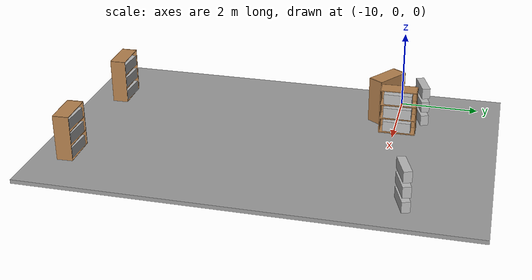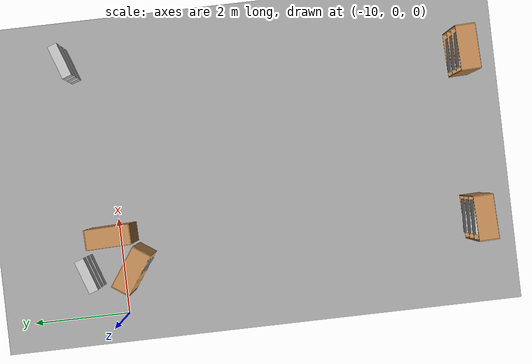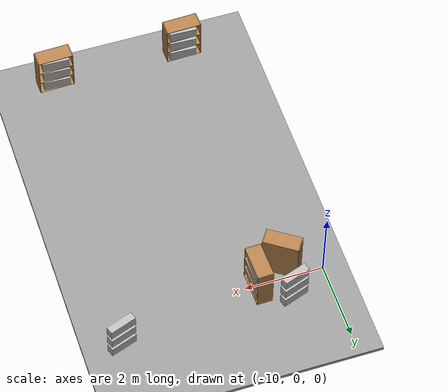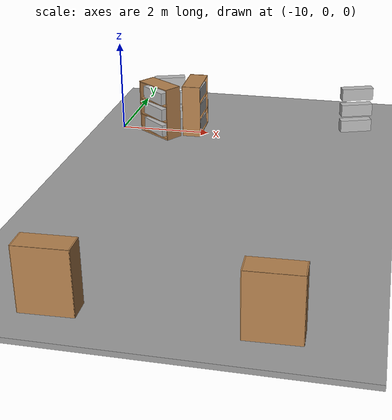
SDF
<sdf version="1.7">
 <world name="default">
  <model name="ground_plane">
   <static>1</static>
   <link name="link">
    <collision name="collision">
     <geometry><plane><normal>0 0 1</normal><size>100 100</size></plane></geometry>
     <surface><friction><ode><mu>100</mu><mu2>50</mu2></ode></friction></surface>
    </collision>
    <visual name="visual">
     <cast_shadows>0</cast_shadows>
     <geometry><plane><normal>0 0 1</normal><size>100 100</size></plane></geometry>
     <material>
      <script><uri>file://media/materials/scripts/gazebo.material</uri><name>Gazebo/Grey</name></script>
     </material>
    </visual>
   </link>
  </model>
  <model name="ground_plane_1">
   <static>1</static>
   <link name="link">
    <collision name="collision">
     <geometry><plane><normal>0 0 1</normal><size>100 100</size></plane></geometry>
     <surface>
      <contact><collide_bitmask>65535</collide_bitmask></contact>
      <friction><ode><mu>100</mu><mu2>50</mu2></ode></friction>
     </surface>
    </collision>
    <visual name="visual">
     <cast_shadows>0</cast_shadows>
     <geometry><plane><normal>0 0 1</normal><size>100 100</size></plane></geometry>
     <material>
      <script><uri>file://media/materials/scripts/gazebo.material</uri><name>Gazebo/Grey</name></script>
     </material>
    </visual>
   </link>
   <pose>-14.0073 -2.16514 0 0 -0 0</pose>
  </model>
  <model name="bookshelf_0_clone_0">
   <static>1</static>
   <link name="link">
    <inertial><mass>1</mass></inertial>
    <collision name="back">
     <pose>0 0.005 0.6 0 -0 0</pose>
     <geometry><box><size>0.9 0.01 1.2</size></box></geometry>
    </collision>
    <visual name="visual1">
     <pose>0 0.005 0.6 0 -0 0</pose>
     <geometry><box><size>0.9 0.01 1.2</size></box></geometry>
     <material>
      <script><uri>file://media/materials/scripts/gazebo.material</uri><name>Gazebo/Wood</name></script>
     </material>
    </visual>
    <collision name="left_side">
     <pose>0.45 -0.195 0.6 0 -0 0</pose>
     <geometry><box><size>0.02 0.4 1.2</size></box></geometry>
    </collision>
    <visual name="visual2">
     <pose>0.45 -0.195 0.6 0 -0 0</pose>
     <geometry><box><size>0.02 0.4 1.2</size></box></geometry>
     <material>
      <script><uri>file://media/materials/scripts/gazebo.material</uri><name>Gazebo/Wood</name></script>
     </material>
    </visual>
    <collision name="right_side">
     <pose>-0.45 -0.195 0.6 0 -0 0</pose>
     <geometry><box><size>0.02 0.4 1.2</size></box></geometry>
    </collision>
    <visual name="visual3">
     <pose>-0.45 -0.195 0.6 0 -0 0</pose>
     <geometry><box><size>0.02 0.4 1.2</size></box></geometry>
     <material>
      <script><uri>file://media/materials/scripts/gazebo.material</uri><name>Gazebo/Wood</name></script>
     </material>
    </visual>
    <collision name="bottom">
     <pose>0 -0.195 0.03 0 -0 0</pose>
     <geometry><box><size>0.88 0.4 0.06</size></box></geometry>
    </collision>
    <visual name="visual4">
     <pose>0 -0.195 0.03 0 -0 0</pose>
     <geometry><box><size>0.88 0.4 0.06</size></box></geometry>
     <material>
      <script><uri>file://media/materials/scripts/gazebo.material</uri><name>Gazebo/Wood</name></script>
     </material>
    </visual>
    <collision name="top">
     <pose>0 -0.195 1.19 0 -0 0</pose>
     <geometry><box><size>0.88 0.4 0.02</size></box></geometry>
    </collision>
    <visual name="visual5">
     <pose>0 -0.195 1.19 0 -0 0</pose>
     <geometry><box><size>0.88 0.4 0.02</size></box></geometry>
     <material>
      <script><uri>file://media/materials/scripts/gazebo.material</uri><name>Gazebo/Wood</name></script>
     </material>
    </visual>
    <collision name="low_shelf">
     <pose>0 -0.195 0.43 0 -0 0</pose>
     <geometry><box><size>0.88 0.4 0.02</size></box></geometry>
    </collision>
    <visual name="visual6">
     <pose>0 -0.195 0.43 0 -0 0</pose>
     <geometry><box><size>0.88 0.4 0.02</size></box></geometry>
     <material>
      <script><uri>file://media/materials/scripts/gazebo.material</uri><name>Gazebo/Wood</name></script>
     </material>
    </visual>
    <collision name="high_shelf">
     <pose>0 -0.195 0.8 0 -0 0</pose>
     <geometry><box><size>0.88 0.4 0.02</size></box></geometry>
    </collision>
    <visual name="visual7">
     <pose>0 -0.195 0.8 0 -0 0</pose>
     <geometry><box><size>0.88 0.4 0.02</size></box></geometry>
     <material>
      <script><uri>file://media/materials/scripts/gazebo.material</uri><name>Gazebo/Wood</name></script>
     </material>
    </visual>
   </link>
   <pose>-8.75541 -7.62626 0 0 0 -3.10983</pose>
  </model>
  <model name="bookshelf_0_clone_0_clone">
   <static>1</static>
   <link name="link">
    <inertial><mass>1</mass></inertial>
    <collision name="back">
     <pose>0 0.005 0.6 0 -0 0</pose>
     <geometry><box><size>0.9 0.01 1.2</size></box></geometry>
    </collision>
    <visual name="visual1">
     <pose>0 0.005 0.6 0 -0 0</pose>
     <geometry><box><size>0.9 0.01 1.2</size></box></geometry>
     <material>
      <script><uri>file://media/materials/scripts/gazebo.material</uri><name>Gazebo/Wood</name></script>
     </material>
    </visual>
    <collision name="left_side">
     <pose>0.45 -0.195 0.6 0 -0 0</pose>
     <geometry><box><size>0.02 0.4 1.2</size></box></geometry>
    </collision>
    <visual name="visual2">
     <pose>0.45 -0.195 0.6 0 -0 0</pose>
     <geometry><box><size>0.02 0.4 1.2</size></box></geometry>
     <material>
      <script><uri>file://media/materials/scripts/gazebo.material</uri><name>Gazebo/Wood</name></script>
     </material>
    </visual>
    <collision name="right_side">
     <pose>-0.45 -0.195 0.6 0 -0 0</pose>
     <geometry><box><size>0.02 0.4 1.2</size></box></geometry>
    </collision>
    <visual name="visual3">
     <pose>-0.45 -0.195 0.6 0 -0 0</pose>
     <geometry><box><size>0.02 0.4 1.2</size></box></geometry>
     <material>
      <script><uri>file://media/materials/scripts/gazebo.material</uri><name>Gazebo/Wood</name></script>
     </material>
    </visual>
    <collision name="bottom">
     <pose>0 -0.195 0.03 0 -0 0</pose>
     <geometry><box><size>0.88 0.4 0.06</size></box></geometry>
    </collision>
    <visual name="visual4">
     <pose>0 -0.195 0.03 0 -0 0</pose>
     <geometry><box><size>0.88 0.4 0.06</size></box></geometry>
     <material>
      <script><uri>file://media/materials/scripts/gazebo.material</uri><name>Gazebo/Wood</name></script>
     </material>
    </visual>
    <collision name="top">
     <pose>0 -0.195 1.19 0 -0 0</pose>
     <geometry><box><size>0.88 0.4 0.02</size></box></geometry>
    </collision>
    <visual name="visual5">
     <pose>0 -0.195 1.19 0 -0 0</pose>
     <geometry><box><size>0.88 0.4 0.02</size></box></geometry>
     <material>
      <script><uri>file://media/materials/scripts/gazebo.material</uri><name>Gazebo/Wood</name></script>
     </material>
    </visual>
    <collision name="low_shelf">
     <pose>0 -0.195 0.43 0 -0 0</pose>
     <geometry><box><size>0.88 0.4 0.02</size></box></geometry>
    </collision>
    <visual name="visual6">
     <pose>0 -0.195 0.43 0 -0 0</pose>
     <geometry><box><size>0.88 0.4 0.02</size></box></geometry>
     <material>
      <script><uri>file://media/materials/scripts/gazebo.material</uri><name>Gazebo/Wood</name></script>
     </material>
    </visual>
    <collision name="high_shelf">
     <pose>0 -0.195 0.8 0 -0 0</pose>
     <geometry><box><size>0.88 0.4 0.02</size></box></geometry>
    </collision>
    <visual name="visual7">
     <pose>0 -0.195 0.8 0 -0 0</pose>
     <geometry><box><size>0.88 0.4 0.02</size></box></geometry>
     <material>
      <script><uri>file://media/materials/scripts/gazebo.material</uri><name>Gazebo/Wood</name></script>
     </material>
    </visual>
   </link>
   <pose>-5.34307 -7.65405 0 0 0 -3.10983</pose>
  </model>
  <model name="bookshelf_clone_clone_clone_1_clone_0_clone_1">
   <static>1</static>
   <link name="link">
    <inertial><mass>1</mass></inertial>
    <collision name="back">
     <pose>0 0.005 0.6 0 -0 0</pose>
     <geometry><box><size>0.9 0.01 1.2</size></box></geometry>
    </collision>
    <visual name="visual1">
     <pose>0 0.005 0.6 0 -0 0</pose>
     <geometry><box><size>0.9 0.01 1.2</size></box></geometry>
     <material>
      <script><uri>file://media/materials/scripts/gazebo.material</uri><name>Gazebo/Wood</name></script>
     </material>
    </visual>
    <collision name="left_side">
     <pose>0.45 -0.195 0.6 0 -0 0</pose>
     <geometry><box><size>0.02 0.4 1.2</size></box></geometry>
    </collision>
    <visual name="visual2">
     <pose>0.45 -0.195 0.6 0 -0 0</pose>
     <geometry><box><size>0.02 0.4 1.2</size></box></geometry>
     <material>
      <script><uri>file://media/materials/scripts/gazebo.material</uri><name>Gazebo/Wood</name></script>
     </material>
    </visual>
    <collision name="right_side">
     <pose>-0.45 -0.195 0.6 0 -0 0</pose>
     <geometry><box><size>0.02 0.4 1.2</size></box></geometry>
    </collision>
    <visual name="visual3">
     <pose>-0.45 -0.195 0.6 0 -0 0</pose>
     <geometry><box><size>0.02 0.4 1.2</size></box></geometry>
     <material>
      <script><uri>file://media/materials/scripts/gazebo.material</uri><name>Gazebo/Wood</name></script>
     </material>
    </visual>
    <collision name="bottom">
     <pose>0 -0.195 0.03 0 -0 0</pose>
     <geometry><box><size>0.88 0.4 0.06</size></box></geometry>
    </collision>
    <visual name="visual4">
     <pose>0 -0.195 0.03 0 -0 0</pose>
     <geometry><box><size>0.88 0.4 0.06</size></box></geometry>
     <material>
      <script><uri>file://media/materials/scripts/gazebo.material</uri><name>Gazebo/Wood</name></script>
     </material>
    </visual>
    <collision name="top">
     <pose>0 -0.195 1.19 0 -0 0</pose>
     <geometry><box><size>0.88 0.4 0.02</size></box></geometry>
    </collision>
    <visual name="visual5">
     <pose>0 -0.195 1.19 0 -0 0</pose>
     <geometry><box><size>0.88 0.4 0.02</size></box></geometry>
     <material>
      <script><uri>file://media/materials/scripts/gazebo.material</uri><name>Gazebo/Wood</name></script>
     </material>
    </visual>
    <collision name="low_shelf">
     <pose>0 -0.195 0.43 0 -0 0</pose>
     <geometry><box><size>0.88 0.4 0.02</size></box></geometry>
    </collision>
    <visual name="visual6">
     <pose>0 -0.195 0.43 0 -0 0</pose>
     <geometry><box><size>0.88 0.4 0.02</size></box></geometry>
     <material>
      <script><uri>file://media/materials/scripts/gazebo.material</uri><name>Gazebo/Wood</name></script>
     </material>
    </visual>
    <collision name="high_shelf">
     <pose>0 -0.195 0.8 0 -0 0</pose>
     <geometry><box><size>0.88 0.4 0.02</size></box></geometry>
    </collision>
    <visual name="visual7">
     <pose>0 -0.195 0.8 0 -0 0</pose>
     <geometry><box><size>0.88 0.4 0.02</size></box></geometry>
     <material>
      <script><uri>file://media/materials/scripts/gazebo.material</uri><name>Gazebo/Wood</name></script>
     </material>
    </visual>
   </link>
   <pose>-8.91093 -0.143227 0.029212 0 0 -0.598378</pose>
  </model>
  <model name="bookshelf_clone_clone_clone_1_clone_0_clone_2">
   <static>1</static>
   <link name="link">
    <inertial><mass>1</mass></inertial>
    <collision name="back">
     <pose>0 0.005 0.6 0 -0 0</pose>
     <geometry><box><size>0.9 0.01 1.2</size></box></geometry>
    </collision>
    <visual name="visual1">
     <pose>0 0.005 0.6 0 -0 0</pose>
     <geometry><box><size>0.9 0.01 1.2</size></box></geometry>
     <material>
      <script><uri>file://media/materials/scripts/gazebo.material</uri><name>Gazebo/Wood</name></script>
     </material>
    </visual>
    <collision name="left_side">
     <pose>0.45 -0.195 0.6 0 -0 0</pose>
     <geometry><box><size>0.02 0.4 1.2</size></box></geometry>
    </collision>
    <visual name="visual2">
     <pose>0.45 -0.195 0.6 0 -0 0</pose>
     <geometry><box><size>0.02 0.4 1.2</size></box></geometry>
     <material>
      <script><uri>file://media/materials/scripts/gazebo.material</uri><name>Gazebo/Wood</name></script>
     </material>
    </visual>
    <collision name="right_side">
     <pose>-0.45 -0.195 0.6 0 -0 0</pose>
     <geometry><box><size>0.02 0.4 1.2</size></box></geometry>
    </collision>
    <visual name="visual3">
     <pose>-0.45 -0.195 0.6 0 -0 0</pose>
     <geometry><box><size>0.02 0.4 1.2</size></box></geometry>
     <material>
      <script><uri>file://media/materials/scripts/gazebo.material</uri><name>Gazebo/Wood</name></script>
     </material>
    </visual>
    <collision name="bottom">
     <pose>0 -0.195 0.03 0 -0 0</pose>
     <geometry><box><size>0.88 0.4 0.06</size></box></geometry>
    </collision>
    <visual name="visual4">
     <pose>0 -0.195 0.03 0 -0 0</pose>
     <geometry><box><size>0.88 0.4 0.06</size></box></geometry>
     <material>
      <script><uri>file://media/materials/scripts/gazebo.material</uri><name>Gazebo/Wood</name></script>
     </material>
    </visual>
    <collision name="top">
     <pose>0 -0.195 1.19 0 -0 0</pose>
     <geometry><box><size>0.88 0.4 0.02</size></box></geometry>
    </collision>
    <visual name="visual5">
     <pose>0 -0.195 1.19 0 -0 0</pose>
     <geometry><box><size>0.88 0.4 0.02</size></box></geometry>
     <material>
      <script><uri>file://media/materials/scripts/gazebo.material</uri><name>Gazebo/Wood</name></script>
     </material>
    </visual>
    <collision name="low_shelf">
     <pose>0 -0.195 0.43 0 -0 0</pose>
     <geometry><box><size>0.88 0.4 0.02</size></box></geometry>
    </collision>
    <visual name="visual6">
     <pose>0 -0.195 0.43 0 -0 0</pose>
     <geometry><box><size>0.88 0.4 0.02</size></box></geometry>
     <material>
      <script><uri>file://media/materials/scripts/gazebo.material</uri><name>Gazebo/Wood</name></script>
     </material>
    </visual>
    <collision name="high_shelf">
     <pose>0 -0.195 0.8 0 -0 0</pose>
     <geometry><box><size>0.88 0.4 0.02</size></box></geometry>
    </collision>
    <visual name="visual7">
     <pose>0 -0.195 0.8 0 -0 0</pose>
     <geometry><box><size>0.88 0.4 0.02</size></box></geometry>
     <material>
      <script><uri>file://media/materials/scripts/gazebo.material</uri><name>Gazebo/Wood</name></script>
     </material>
    </visual>
   </link>
   <pose>-8.49326 0.08209 0.012624 0 -0 1.60042</pose>
  </model>
  <model name="book1.xacro_clone_9">
   <link name="base_footprint">
    <inertial>
     <pose>1 1 1.5 0 -0 0</pose>
     <mass>6</mass>
     <inertia><ixx>0.7503</ixx><ixy>0</ixy><ixz>0</ixz><iyy>0.7503</iyy><iyz>0</iyz><izz>0.003</izz></inertia>
    </inertial>
    <collision name="base_footprint_fixed_joint_lump__base_link_collision">
     <pose>1 1 1 0 -0 0</pose>
     <geometry><box><size>0.7 0.2 0.27</size></box></geometry>
    </collision>
    <collision name="base_footprint_fixed_joint_lump__book_link_2_collision_1">
     <pose>1 1 1.375 0 -0 0</pose>
     <geometry><box><size>0.7 0.2 0.27</size></box></geometry>
    </collision>
    <collision name="base_footprint_fixed_joint_lump__book_link_3_collision_2">
     <pose>1 1 1.75 0 -0 0</pose>
     <geometry><box><size>0.7 0.2 0.27</size></box></geometry>
    </collision>
    <visual name="base_footprint_fixed_joint_lump__base_link_visual">
     <pose>1 1 1 0 -0 0</pose>
     <geometry><box><size>0.7 0.2 0.27</size></box></geometry>
    </visual>
    <visual name="base_footprint_fixed_joint_lump__book_link_2_visual_1">
     <pose>1 1 1.375 0 -0 0</pose>
     <geometry><box><size>0.7 0.2 0.27</size></box></geometry>
    </visual>
    <visual name="base_footprint_fixed_joint_lump__book_link_3_visual_2">
     <pose>1 1 1.75 0 -0 0</pose>
     <geometry><box><size>0.7 0.2 0.27</size></box></geometry>
    </visual>
   </link>
   <frame name="book_joint_2" attached_to="base_link"><pose>0 0 0.375 0 -0 0</pose></frame>
   <frame name="book_link_2" attached_to="book_joint_2"/>
   <frame name="book_joint_3" attached_to="base_link"><pose>0 0 0.75 0 -0 0</pose></frame>
   <frame name="book_link_3" attached_to="book_joint_3"/>
   <frame name="base_joint" attached_to="base_footprint"><pose>1 1 1 0 -0 0</pose></frame>
   <frame name="base_link" attached_to="base_joint"/>
   <pose>-9.78014 -8.2936 -0.8 0 0 -0.034408</pose>
  </model>
  <model name="book1.xacro_clone_10">
   <link name="base_footprint">
    <inertial>
     <pose>1 1 1.5 0 -0 0</pose>
     <mass>6</mass>
     <inertia><ixx>0.7503</ixx><ixy>0</ixy><ixz>0</ixz><iyy>0.7503</iyy><iyz>0</iyz><izz>0.003</izz></inertia>
    </inertial>
    <collision name="base_footprint_fixed_joint_lump__base_link_collision">
     <pose>1 1 1 0 -0 0</pose>
     <geometry><box><size>0.7 0.2 0.27</size></box></geometry>
    </collision>
    <collision name="base_footprint_fixed_joint_lump__book_link_2_collision_1">
     <pose>1 1 1.375 0 -0 0</pose>
     <geometry><box><size>0.7 0.2 0.27</size></box></geometry>
    </collision>
    <collision name="base_footprint_fixed_joint_lump__book_link_3_collision_2">
     <pose>1 1 1.75 0 -0 0</pose>
     <geometry><box><size>0.7 0.2 0.27</size></box></geometry>
    </collision>
    <visual name="base_footprint_fixed_joint_lump__base_link_visual">
     <pose>1 1 1 0 -0 0</pose>
     <geometry><box><size>0.7 0.2 0.27</size></box></geometry>
    </visual>
    <visual name="base_footprint_fixed_joint_lump__book_link_2_visual_1">
     <pose>1 1 1.375 0 -0 0</pose>
     <geometry><box><size>0.7 0.2 0.27</size></box></geometry>
    </visual>
    <visual name="base_footprint_fixed_joint_lump__book_link_3_visual_2">
     <pose>1 1 1.75 0 -0 0</pose>
     <geometry><box><size>0.7 0.2 0.27</size></box></geometry>
    </visual>
   </link>
   <frame name="book_joint_2" attached_to="base_link"><pose>0 0 0.375 0 -0 0</pose></frame>
   <frame name="book_link_2" attached_to="book_joint_2"/>
   <frame name="book_joint_3" attached_to="base_link"><pose>0 0 0.75 0 -0 0</pose></frame>
   <frame name="book_link_3" attached_to="book_joint_3"/>
   <frame name="base_joint" attached_to="base_footprint"><pose>1 1 1 0 -0 0</pose></frame>
   <frame name="base_link" attached_to="base_joint"/>
   <pose>-6.39319 -8.35026 -0.799991 0 1.3e-05 -0.030368</pose>
  </model>
  <model name="book1.xacro_clone_16_clone_clone_0">
   <link name="base_footprint">
    <inertial>
     <pose>1 1 1.5 0 -0 0</pose>
     <mass>6</mass>
     <inertia><ixx>0.7503</ixx><ixy>0</ixy><ixz>0</ixz><iyy>0.7503</iyy><iyz>0</iyz><izz>0.003</izz></inertia>
    </inertial>
    <collision name="base_footprint_fixed_joint_lump__base_link_collision">
     <pose>1 1 1 0 -0 0</pose>
     <geometry><box><size>0.7 0.2 0.27</size></box></geometry>
    </collision>
    <collision name="base_footprint_fixed_joint_lump__book_link_2_collision_1">
     <pose>1 1 1.375 0 -0 0</pose>
     <geometry><box><size>0.7 0.2 0.27</size></box></geometry>
    </collision>
    <collision name="base_footprint_fixed_joint_lump__book_link_3_collision_2">
     <pose>1 1 1.75 0 -0 0</pose>
     <geometry><box><size>0.7 0.2 0.27</size></box></geometry>
    </collision>
    <visual name="base_footprint_fixed_joint_lump__base_link_visual">
     <pose>1 1 1 0 -0 0</pose>
     <geometry><box><size>0.7 0.2 0.27</size></box></geometry>
    </visual>
    <visual name="base_footprint_fixed_joint_lump__book_link_2_visual_1">
     <pose>1 1 1.375 0 -0 0</pose>
     <geometry><box><size>0.7 0.2 0.27</size></box></geometry>
    </visual>
    <visual name="base_footprint_fixed_joint_lump__book_link_3_visual_2">
     <pose>1 1 1.75 0 -0 0</pose>
     <geometry><box><size>0.7 0.2 0.27</size></box></geometry>
    </visual>
   </link>
   <frame name="book_joint_2" attached_to="base_link"><pose>0 0 0.375 0 -0 0</pose></frame>
   <frame name="book_link_2" attached_to="book_joint_2"/>
   <frame name="book_joint_3" attached_to="base_link"><pose>0 0 0.75 0 -0 0</pose></frame>
   <frame name="book_link_3" attached_to="book_joint_3"/>
   <frame name="base_joint" attached_to="base_footprint"><pose>1 1 1 0 -0 0</pose></frame>
   <frame name="base_link" attached_to="base_joint"/>
   <pose>-7.24073 -0.932159 -0.787376 0 -0 1.55906</pose>
  </model>
  <model name="book1.xacro_clone_16_clone_clone_1">
   <link name="base_footprint">
    <inertial>
     <pose>1 1 1.5 0 -0 0</pose>
     <mass>6</mass>
     <inertia><ixx>0.7503</ixx><ixy>0</ixy><ixz>0</ixz><iyy>0.7503</iyy><iyz>0</iyz><izz>0.003</izz></inertia>
    </inertial>
    <collision name="base_footprint_fixed_joint_lump__base_link_collision">
     <pose>1 1 1 0 -0 0</pose>
     <geometry><box><size>0.7 0.2 0.27</size></box></geometry>
    </collision>
    <collision name="base_footprint_fixed_joint_lump__book_link_2_collision_1">
     <pose>1 1 1.375 0 -0 0</pose>
     <geometry><box><size>0.7 0.2 0.27</size></box></geometry>
    </collision>
    <collision name="base_footprint_fixed_joint_lump__book_link_3_collision_2">
     <pose>1 1 1.75 0 -0 0</pose>
     <geometry><box><size>0.7 0.2 0.27</size></box></geometry>
    </collision>
    <visual name="base_footprint_fixed_joint_lump__base_link_visual">
     <pose>1 1 1 0 -0 0</pose>
     <geometry><box><size>0.7 0.2 0.27</size></box></geometry>
    </visual>
    <visual name="base_footprint_fixed_joint_lump__book_link_2_visual_1">
     <pose>1 1 1.375 0 -0 0</pose>
     <geometry><box><size>0.7 0.2 0.27</size></box></geometry>
    </visual>
    <visual name="base_footprint_fixed_joint_lump__book_link_3_visual_2">
     <pose>1 1 1.75 0 -0 0</pose>
     <geometry><box><size>0.7 0.2 0.27</size></box></geometry>
    </visual>
   </link>
   <frame name="book_joint_2" attached_to="base_link"><pose>0 0 0.375 0 -0 0</pose></frame>
   <frame name="book_link_2" attached_to="book_joint_2"/>
   <frame name="book_joint_3" attached_to="base_link"><pose>0 0 0.75 0 -0 0</pose></frame>
   <frame name="book_link_3" attached_to="book_joint_3"/>
   <frame name="base_joint" attached_to="base_footprint"><pose>1 1 1 0 -0 0</pose></frame>
   <frame name="base_link" attached_to="base_joint"/>
   <pose>-7.68328 -0.23563 -0.770784 -4e-06 0 2.43877</pose>
  </model>
  <model name="book1.xacro_clone_0_clone_3_clone">
   <link name="base_footprint">
    <inertial>
     <pose>1 1 1.5 0 -0 0</pose>
     <mass>6</mass>
     <inertia><ixx>0.7503</ixx><ixy>0</ixy><ixz>0</ixz><iyy>0.7503</iyy><iyz>0</iyz><izz>0.003</izz></inertia>
    </inertial>
    <collision name="base_footprint_fixed_joint_lump__base_link_collision">
     <pose>1 1 1 0 -0 0</pose>
     <geometry><box><size>0.7 0.2 0.27</size></box></geometry>
    </collision>
    <collision name="base_footprint_fixed_joint_lump__book_link_2_collision_1">
     <pose>1 1 1.375 0 -0 0</pose>
     <geometry><box><size>0.7 0.2 0.27</size></box></geometry>
    </collision>
    <collision name="base_footprint_fixed_joint_lump__book_link_3_collision_2">
     <pose>1 1 1.75 0 -0 0</pose>
     <geometry><box><size>0.7 0.2 0.27</size></box></geometry>
    </collision>
    <visual name="base_footprint_fixed_joint_lump__base_link_visual">
     <pose>1 1 1 0 -0 0</pose>
     <geometry><box><size>0.7 0.2 0.27</size></box></geometry>
    </visual>
    <visual name="base_footprint_fixed_joint_lump__book_link_2_visual_1">
     <pose>1 1 1.375 0 -0 0</pose>
     <geometry><box><size>0.7 0.2 0.27</size></box></geometry>
    </visual>
    <visual name="base_footprint_fixed_joint_lump__book_link_3_visual_2">
     <pose>1 1 1.75 0 -0 0</pose>
     <geometry><box><size>0.7 0.2 0.27</size></box></geometry>
    </visual>
   </link>
   <frame name="book_joint_2" attached_to="base_link"><pose>0 0 0.375 0 -0 0</pose></frame>
   <frame name="book_link_2" attached_to="book_joint_2"/>
   <frame name="book_joint_3" attached_to="base_link"><pose>0 0 0.75 0 -0 0</pose></frame>
   <frame name="book_link_3" attached_to="book_joint_3"/>
   <frame name="base_joint" attached_to="base_footprint"><pose>1 1 1 0 -0 0</pose></frame>
   <frame name="base_link" attached_to="base_joint"/>
   <pose>-5.30556 -0.616071 -0.787378 0 -3e-06 0.338939</pose>
  </model>
  <model name="book1.xacro_clone_0_clone_3_clone_0">
   <link name="base_footprint">
    <inertial>
     <pose>1 1 1.5 0 -0 0</pose>
     <mass>6</mass>
     <inertia><ixx>0.7503</ixx><ixy>0</ixy><ixz>0</ixz><iyy>0.7503</iyy><iyz>0</iyz><izz>0.003</izz></inertia>
    </inertial>
    <collision name="base_footprint_fixed_joint_lump__base_link_collision">
     <pose>1 1 1 0 -0 0</pose>
     <geometry><box><size>0.7 0.2 0.27</size></box></geometry>
    </collision>
    <collision name="base_footprint_fixed_joint_lump__book_link_2_collision_1">
     <pose>1 1 1.375 0 -0 0</pose>
     <geometry><box><size>0.7 0.2 0.27</size></box></geometry>
    </collision>
    <collision name="base_footprint_fixed_joint_lump__book_link_3_collision_2">
     <pose>1 1 1.75 0 -0 0</pose>
     <geometry><box><size>0.7 0.2 0.27</size></box></geometry>
    </collision>
    <visual name="base_footprint_fixed_joint_lump__base_link_visual">
     <pose>1 1 1 0 -0 0</pose>
     <geometry><box><size>0.7 0.2 0.27</size></box></geometry>
    </visual>
    <visual name="base_footprint_fixed_joint_lump__book_link_2_visual_1">
     <pose>1 1 1.375 0 -0 0</pose>
     <geometry><box><size>0.7 0.2 0.27</size></box></geometry>
    </visual>
    <visual name="base_footprint_fixed_joint_lump__book_link_3_visual_2">
     <pose>1 1 1.75 0 -0 0</pose>
     <geometry><box><size>0.7 0.2 0.27</size></box></geometry>
    </visual>
   </link>
   <frame name="book_joint_2" attached_to="base_link"><pose>0 0 0.375 0 -0 0</pose></frame>
   <frame name="book_link_2" attached_to="book_joint_2"/>
   <frame name="book_joint_3" attached_to="base_link"><pose>0 0 0.75 0 -0 0</pose></frame>
   <frame name="book_link_3" attached_to="book_joint_3"/>
   <frame name="base_joint" attached_to="base_footprint"><pose>1 1 1 0 -0 0</pose></frame>
   <frame name="base_link" attached_to="base_joint"/>
   <pose>-9.64255 -0.661141 -0.787368 2e-06 1.4e-05 0.335196</pose>
  </model>
 </world>
</sdf>
